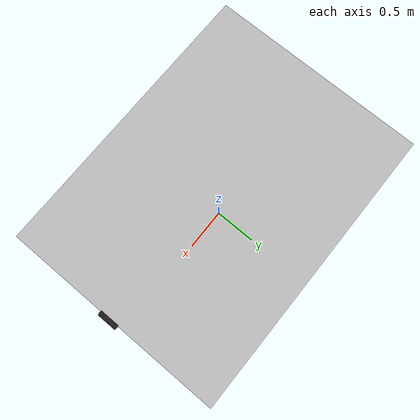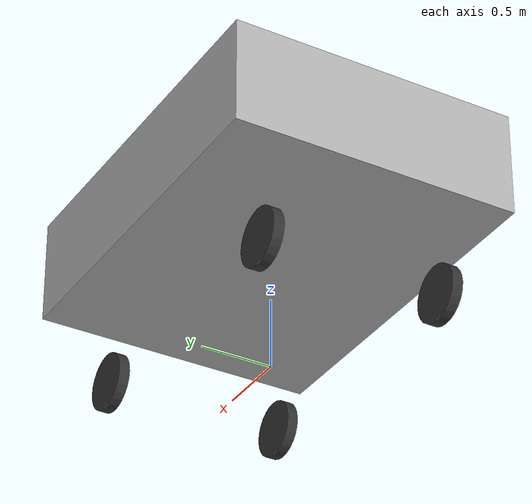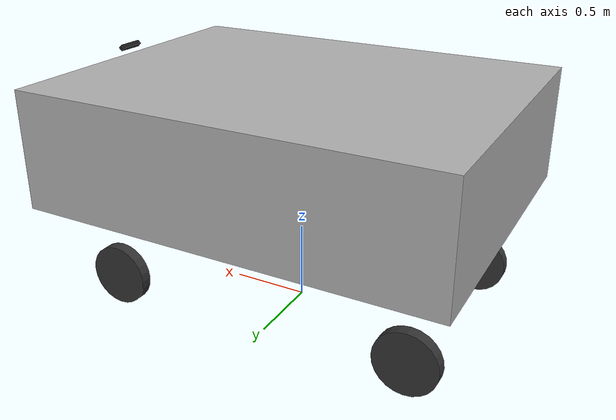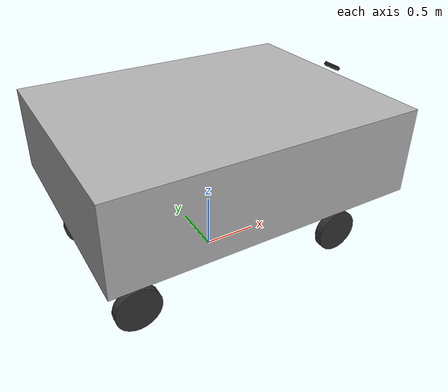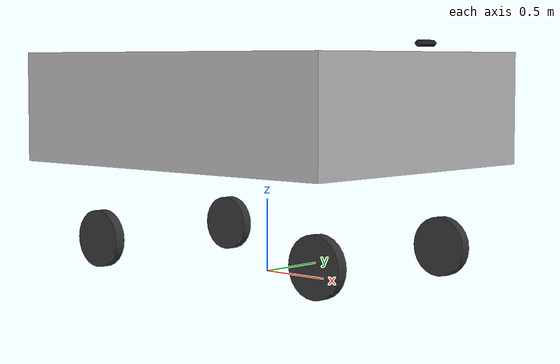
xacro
<?xml version="1.0"?>
<robot xmlns:xacro="http://www.ros.org/wiki/xacro" name="ranger1s_sprayer">

  <xacro:property name="chassis_length" value="2.65"/>
  <xacro:property name="chassis_width" value="2.02"/>
  <xacro:property name="chassis_height" value="0.75"/>
  <xacro:property name="chassis_mass" value="600.0"/>

  <xacro:property name="wheel_radius" value="0.2"/>
  <xacro:property name="wheel_length" value="0.075"/>
  <xacro:property name="wheel_mass" value="5.0"/>

  <xacro:property name="wheel_offset_x" value="1.0"/>
  <xacro:property name="wheel_offset_y" value="0.6375"/>
  <xacro:property name="wheel_offset_z" value="-0.925"/>

  <material name="grey"><color rgba="0.7 0.7 0.7 1"/></material>
  <material name="black"><color rgba="0.2 0.2 0.2 1"/></material>
  <material name="black_zed"><color rgba="0.1 0.1 0.1 1"/></material>

  <link name="base_footprint"/>

  <joint name="base_joint" type="fixed">
    <parent link="base_footprint"/>
    <child link="base_link"/>
    <origin xyz="0 0 1.125" rpy="0 0 0"/>
  </joint>

  <link name="base_link">
    <visual>
      <geometry>
        <box size="${chassis_length} ${chassis_width} ${chassis_height}"/>
      </geometry>
      <material name="grey"/>
    </visual>
    <collision>
      <geometry>
        <box size="${chassis_length} ${chassis_width} ${chassis_height}"/>
      </geometry>
    </collision>
    <inertial>
      <mass value="${chassis_mass}"/>
      <inertia ixx="232.0" ixy="0.0" ixz="0.0" iyy="379.0" iyz="0.0" izz="555.0"/>
    </inertial>
  </link>

  <xacro:macro name="wheel" params="prefix x_reflect y_reflect">
    <link name="${prefix}_wheel">
      <visual>
        <origin xyz="0 0 0" rpy="1.570796 0 0"/>
        <geometry>
          <cylinder radius="${wheel_radius}" length="${wheel_length}"/>
        </geometry>
        <material name="black"/>
      </visual>
      <collision>
        <origin xyz="0 0 0" rpy="1.570796 0 0"/>
        <geometry>
          <cylinder radius="${wheel_radius}" length="${wheel_length}"/>
        </geometry>
      </collision>
      <inertial>
        <mass value="${wheel_mass}"/>
        <inertia ixx="0.05" ixy="0" ixz="0" iyy="0.05" iyz="0" izz="0.1"/>
      </inertial>
    </link>

    <joint name="${prefix}_wheel_joint" type="continuous">
      <parent link="base_link"/>
      <child link="${prefix}_wheel"/>
      <origin xyz="${x_reflect * wheel_offset_x} ${y_reflect * wheel_offset_y} ${wheel_offset_z}" rpy="0 0 0"/>
      <axis xyz="0 1 0"/>
    </joint>
  </xacro:macro>

  <xacro:wheel prefix="front_left" x_reflect="1" y_reflect="1" />
  <xacro:wheel prefix="front_right" x_reflect="1" y_reflect="-1" />
  <xacro:wheel prefix="rear_left" x_reflect="-1" y_reflect="1" />
  <xacro:wheel prefix="rear_right" x_reflect="-1" y_reflect="-1" />

  <link name="zed_camera_link">
    <visual>
      <geometry>
        <box size="0.03 0.175 0.03"/>
      </geometry>
      <material name="black_zed"/>
    </visual>
    <collision>
      <geometry>
        <box size="0.03 0.175 0.03"/>
      </geometry>
    </collision>
    <inertial>
      <mass value="0.2"/>
      <inertia ixx="0.0001" ixy="0" ixz="0" iyy="0.0001" iyz="0" izz="0.0001"/>
    </inertial>
  </link>

  <joint name="zed_camera_joint" type="fixed">
    <parent link="base_link"/>
    <child link="zed_camera_link"/>
    <origin xyz="${chassis_length/2} 0 ${chassis_height/2 + 0.05}" rpy="0 0.7854 0"/>
  </joint>

  <gazebo reference="zed_camera_link">
    <sensor name="zed_camera" type="camera">
      <camera>
        <horizontal_fov>1.91986</horizontal_fov>
        <image>
          <width>1280</width>
          <height>720</height>
        </image>
        <clip>
          <near>0.3</near>
          <far>20.0</far>
        </clip>
      </camera>
      <always_on>1</always_on>
      <update_rate>30</update_rate>
      <visualize>true</visualize>
      <topic>zed/image_raw</topic>
    </sensor>
  </gazebo>

  <gazebo>
    <plugin filename="ignition-gazebo-diff-drive-system" name="ignition::gazebo::systems::DiffDrive">
      <left_joint>front_left_wheel_joint</left_joint>
      <left_joint>rear_left_wheel_joint</left_joint>
      <right_joint>front_right_wheel_joint</right_joint>
      <right_joint>rear_right_wheel_joint</right_joint>
      <wheel_separation>2.095</wheel_separation>
      <wheel_radius>0.2</wheel_radius>
      <odom_publish_frequency>30</odom_publish_frequency>
      <topic>cmd_vel</topic>
      <odom_topic>odom</odom_topic>
      <frame_id>odom</frame_id>
      <child_frame_id>base_footprint</child_frame_id>
    </plugin>

    <plugin filename="ignition-gazebo-joint-state-publisher-system" name="ignition::gazebo::systems::JointStatePublisher">
      <topic>joint_states</topic>
      <joint_name>front_left_wheel_joint</joint_name>
      <joint_name>front_right_wheel_joint</joint_name>
      <joint_name>rear_left_wheel_joint</joint_name>
      <joint_name>rear_right_wheel_joint</joint_name>
    </plugin>
  </gazebo>

</robot>
